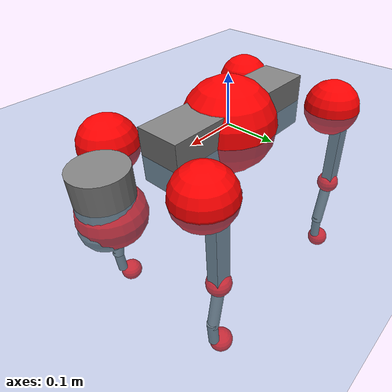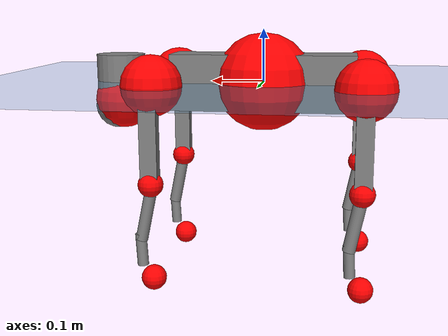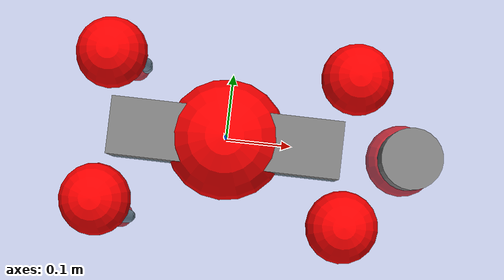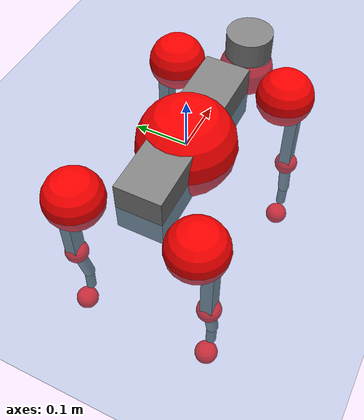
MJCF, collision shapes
<mujoco model="go2">
  <compiler angle="radian" assetdir="assets" balanceinertia="true" inertiafromgeom="false"/>

  <option timestep="0.005" density="1.2" viscosity="2e-05"/>

  <size nkey="1"/>

  <visual>
    <quality shadowsize="8192"/>
    <map shadowclip="0.5"/>
  </visual>

  <default>
    <default class="/">
      <geom contype="0" conaffinity="0" group="1" solref="-1000 -80"/>
      <site size="0.01 0.005 0.005" group="5"/>
      <general forcelimited="true" biastype="affine" gainprm="20" biasprm="0 -20 -0.5"/>
      <default class="go2">
        <joint armature="0.01" damping="0.01" frictionloss="0.2"/>
        <geom condim="1" margin="0.001"/>
        <default class="visual">
          <geom type="mesh" group="2"/>
        </default>
        <default class="collision">
          <geom group="3"/>
          <default class="foot">
            <geom size="0.022 0 0" condim="6" priority="1" friction="0.8 0.02 0.01" solimp="0.015 1 0.022"/>
          </default>
        </default>
        <default class="reward_collision_sphere">
          <geom group="5" rgba="1 0 0 1"/>
        </default>
      </default>
    </default>
  </default>

  <asset>
    <texture type="skybox" colorspace="auto" name="//unnamed_texture_0" builtin="gradient" rgb1="0.95 0.95 0.95" rgb2="0.95 0.95 0.95" width="100" height="600"/>
    <texture type="2d" colorspace="auto" name="texplane" builtin="checker" rgb1="0.345 0.575 0.748" rgb2="0.345 0.575 0.748" markrgb="1 1 1" width="512" height="512"/>
    <material name="MatPlane" class="/" texture="texplane" texuniform="true" texrepeat="2 2" specular="0.9"/>
    <material name="metal" class="/" rgba="0.9 0.95 0.95 1"/>
    <material name="black" class="/" rgba="0 0 0 1"/>
    <material name="white" class="/"/>
    <material name="gray" class="/" rgba="0.671705 0.692426 0.77427 1"/>
    <mesh name="base_0" class="/" file="base_0.obj"/>
    <mesh name="base_1" class="/" file="base_1.obj"/>
    <mesh name="base_2" class="/" file="base_2.obj"/>
    <mesh name="base_3" class="/" file="base_3.obj"/>
    <mesh name="base_4" class="/" file="base_4.obj"/>
    <mesh name="hip_0" class="/" file="hip_0.obj"/>
    <mesh name="hip_1" class="/" file="hip_1.obj"/>
    <mesh name="thigh_0" class="/" file="thigh_0.obj"/>
    <mesh name="thigh_1" class="/" file="thigh_1.obj"/>
    <mesh name="thigh_mirror_0" class="/" file="thigh_mirror_0.obj"/>
    <mesh name="thigh_mirror_1" class="/" file="thigh_mirror_1.obj"/>
    <mesh name="calf_0" class="/" file="calf_0.obj"/>
    <mesh name="calf_1" class="/" file="calf_1.obj"/>
    <mesh name="calf_mirror_0" class="/" file="calf_mirror_0.obj"/>
    <mesh name="calf_mirror_1" class="/" file="calf_mirror_1.obj"/>
    <mesh name="foot" class="/" file="foot.obj"/>
  </asset>

  <worldbody>
    <geom name="floor" class="/" size="100 100 0.125" type="plane" group="0" material="MatPlane"/>
    <light name="toplight_shadow" class="/" pos="0 0 5" dir="0.0990148 0.0990148 -0.990148" type="directional" ambient="0.04 0.04 0.04" diffuse="0.55 0.55 0.55" specular="0.12 0.12 0.12"/>
    <light name="toplight_fill" class="/" pos="0 0 5" dir="0.0990148 0.0990148 -0.990148" type="directional" castshadow="false" ambient="0.04 0.04 0.04" diffuse="0.3 0.3 0.3" specular="0.08 0.08 0.08"/>
    <body name="trunk" childclass="go2" pos="-0.00042133 1.07958e-05 -2.92318e-05" quat="1 6.53647e-05 0.000250414 4.86571e-05">
      <inertial pos="0.019828 0.000261048 -0.00428816" quat="-0.000557277 0.713875 0.000656311 0.700272" mass="5.67584" diaginertia="0.10101 0.0878772 0.010138"/>
      <joint name="//unnamed_joint_0" type="free" armature="0" damping="0" frictionloss="0"/>
      <geom name="//unnamed_geom_1" class="visual" material="black" mesh="base_0"/>
      <geom name="//unnamed_geom_2" class="visual" material="black" mesh="base_1"/>
      <geom name="//unnamed_geom_3" class="visual" material="black" mesh="base_2"/>
      <geom name="//unnamed_geom_4" class="visual" material="white" mesh="base_3"/>
      <geom name="//unnamed_geom_5" class="visual" material="gray" mesh="base_4"/>
      <geom name="trunk_1" class="collision" size="0.176024 0.0437488 0.0533408" type="box"/>
      <geom name="trunk_2" class="collision" size="0.0467901 0.0421111" pos="0.282038 0 0.00838241" type="cylinder"/>
      <geom name="trunk_3" class="collision" size="0.0439827" pos="0.289955 0 -0.0502945"/>
      <geom name="//unnamed_geom_9" class="reward_collision_sphere" size="0.0935803"/>
      <geom name="//unnamed_geom_10" class="reward_collision_sphere" size="0.0561482" pos="0.27709 0 -0.0377209"/>
      <site name="imu" pos="-0.0242572 -0.000356725 0.0345324" size="0.00935803"/>
      <camera name="track" pos="0 -1.95912 0" quat="0.707107 0.707107 0 0" mode="trackcom"/>
      <camera name="ego_camera" pos="0.308757 0 0.0377209" quat="-0.5 -0.5 0.5 0.5"/>
      <body name="FL_hip" pos="0.19168 0.0466271 0.0026151" quat="1 0.000101499 -1.13045e-05 4.79667e-05">
        <inertial pos="-0.00529519 0.00284702 8.88683e-05" quat="0.497019 0.499239 0.505465 0.498235" mass="0.54401" diaginertia="0.000831388 0.000534638 0.00019661"/>
        <joint name="FL_hip_joint" pos="0 0 0" axis="0.999998 0.00110705 -0.00170969" stiffness="0.00231285" range="-1.04807 1.04247" armature="0.00930765" damping="0.00265878" frictionloss="0.195463"/>
        <geom name="//unnamed_geom_11" class="visual" material="metal" mesh="hip_0"/>
        <geom name="//unnamed_geom_12" class="visual" material="gray" mesh="hip_1"/>
        <geom name="//unnamed_geom_13" class="collision" size="0.0430469 0.0187161" pos="0 0.0783649 0" quat="0.707107 0.707107 0 0" type="cylinder"/>
        <geom name="//unnamed_geom_14" class="reward_collision_sphere" size="0.0561482" pos="0 0.0685693 0"/>
        <body name="FL_thigh" pos="0.000343267 0.0939602 0.000989316" quat="1 1.69098e-06 -2.15585e-05 9.4087e-06">
          <inertial pos="-0.00401392 -0.0217443 -0.0280902" quat="0.830902 0.0850106 -0.0218926 0.549451" mass="0.956858" diaginertia="0.00566408 0.00523967 0.000365863"/>
          <joint name="FL_thigh_joint" pos="0 0 0" axis="-0.00397372 0.999972 0.00639892" stiffness="0.00531669" range="-1.57125 3.47505" armature="0.00914013" damping="0.00439565" frictionloss="0.19522"/>
          <geom name="//unnamed_geom_15" class="visual" material="metal" mesh="thigh_0"/>
          <geom name="//unnamed_geom_16" class="visual" material="gray" mesh="thigh_1"/>
          <geom name="//unnamed_geom_17" class="collision" size="0.099663 0.0114636 0.0159086" pos="0 0 -0.0892727" quat="0.707107 0 0.707107 0" type="box"/>
          <body name="FL_calf" pos="-0.000581334 -0.000752561 -0.178805" quat="1 -0.000124485 -4.59884e-05 0.000158631">
            <inertial pos="0.00618966 -2.66183e-06 -0.11714" quat="0.711228 0.00106819 -0.00408284 0.702949" mass="0.196595" diaginertia="0.0014142 0.00131019 2.20145e-05"/>
            <joint name="FL_calf_joint" pos="0 0 0" axis="0.00108999 0.999993 -0.00349104" range="-2.74276 -0.83381" armature="0.00939456" damping="0.0014993" frictionloss="0.189133"/>
            <geom name="//unnamed_geom_18" class="visual" material="gray" mesh="calf_0"/>
            <geom name="//unnamed_geom_19" class="visual" material="black" mesh="calf_1"/>
            <geom name="FL_calf0" class="collision" size="0.0112296 0.0561482" pos="0.00791685 0 -0.0502945" quat="0.994493 0 -0.104807 0" type="cylinder"/>
            <geom name="//unnamed_geom_21" class="collision" size="0.0102938 0.0304136" pos="0.0197921 0 -0.12406" quat="0.999688 0 0.0249974 0" type="cylinder"/>
            <geom name="//unnamed_geom_22" class="visual" pos="0 0 -0.178545" quat="1 0 0 0" material="black" mesh="foot"/>
            <geom name="FL_foot" class="foot" size="0.0183044" pos="-0.00197921 0 -0.178545"/>
            <geom name="//unnamed_geom_24" class="reward_collision_sphere" size="0.0233951"/>
            <geom name="//unnamed_geom_25" class="reward_collision_sphere" size="0.0233951" pos="-0.00197921 0 -0.178545"/>
            <site name="FL_foot" class="foot" pos="-0.00197921 0 -0.178545" size="0.00935803"/>
          </body>
        </body>
      </body>
      <body name="FR_hip" pos="0.191928 -0.0454936 0.000410669" quat="1 0.000104521 -7.48322e-05 -3.41051e-05">
        <inertial pos="-0.00428493 -0.00281398 0.000576296" quat="0.498898 0.507124 0.496626 0.497282" mass="0.560173" diaginertia="0.000848729 0.000540923 0.000201292"/>
        <joint name="FR_hip_joint" pos="0 0 0" axis="1 0.000419992 0.000306484" range="-1.04094 1.04869" armature="0.00939812" damping="0.0144564" frictionloss="0.185838"/>
        <geom name="//unnamed_geom_26" class="visual" pos="0 1.23112e-09 5.28051e-08" quat="4.63268e-05 1 0 0" material="metal" mesh="hip_0"/>
        <geom name="//unnamed_geom_27" class="visual" pos="0 1.99579e-09 -1.30607e-07" quat="4.63268e-05 1 0 0" material="gray" mesh="hip_1"/>
        <geom name="//unnamed_geom_28" class="collision" size="0.0430469 0.0187161" pos="0 -0.0783649 0" quat="0.707107 0.707107 0 0" type="cylinder"/>
        <geom name="//unnamed_geom_29" class="reward_collision_sphere" size="0.0561482" pos="0 -0.0685693 0"/>
        <body name="FR_thigh" pos="-0.000382445 -0.0931896 0.00042298" quat="1 -1.12577e-05 4.12765e-06 2.18643e-05">
          <inertial pos="-0.00312407 0.0218014 -0.026391" quat="0.551982 -0.0157328 0.0855718 0.829304" mass="0.931613" diaginertia="0.0056779 0.00526518 0.000362676"/>
          <joint name="FR_thigh_joint" pos="0 0 0" axis="0.000345468 -0.999999 0.00157148" stiffness="0.000128149" range="-3.49103 1.55991" armature="0.00975036" damping="0.015931" frictionloss="0.183403"/>
          <geom name="//unnamed_geom_30" class="visual" material="metal" mesh="thigh_mirror_0"/>
          <geom name="//unnamed_geom_31" class="visual" material="gray" mesh="thigh_mirror_1"/>
          <geom name="//unnamed_geom_32" class="collision" size="0.099663 0.0114636 0.0159086" pos="0 0 -0.0892727" quat="0.707107 0 0.707107 0" type="box"/>
          <body name="FR_calf" pos="0.000531511 -0.00100268 -0.178562" quat="1 0.00032184 1.127e-05 0.000331879">
            <inertial pos="0.00695126 0.000690908 -0.118876" quat="0.702757 -0.00345549 0.0039651 0.71141" mass="0.194117" diaginertia="0.00139701 0.00131913 2.17855e-05"/>
            <joint name="FR_calf_joint" pos="0 0 0" axis="0.00290213 -0.999993 -0.00225207" range="0.830488 2.7394" armature="0.00908051" damping="0.0104219" frictionloss="0.182181"/>
            <geom name="//unnamed_geom_33" class="visual" material="gray" mesh="calf_mirror_0"/>
            <geom name="//unnamed_geom_34" class="visual" material="black" mesh="calf_mirror_1"/>
            <geom name="FR_calf0" class="collision" size="0.0121654 0.0561482" pos="0.00989606 0 -0.0502945" quat="0.995004 0 -0.0998334 0" type="cylinder"/>
            <geom name="//unnamed_geom_36" class="collision" size="0.0102938 0.0304136" pos="0.0197921 0 -0.12406" quat="0.999688 0 0.0249974 0" type="cylinder"/>
            <geom name="//unnamed_geom_37" class="visual" pos="0 0 -0.178545" quat="1 0 0 0" material="black" mesh="foot"/>
            <geom name="FR_foot" class="foot" size="0.0216282" pos="-0.00197921 0 -0.178545"/>
            <geom name="//unnamed_geom_39" class="reward_collision_sphere" size="0.0233951"/>
            <geom name="//unnamed_geom_40" class="reward_collision_sphere" size="0.0233951" pos="-0.00197921 0 -0.178545"/>
            <site name="FR_foot" class="foot" pos="-0.00197921 0 -0.178545" size="0.00935803"/>
          </body>
        </body>
      </body>
      <body name="RL_hip" pos="-0.191593 0.0463812 -0.000918375" quat="1 8.06605e-05 8.58198e-06 -8.05084e-05">
        <inertial pos="0.00522161 0.00135573 -0.00122468" quat="0.506599 0.499841 0.495376 0.498116" mass="0.557903" diaginertia="0.000853557 0.000536572 0.000201537"/>
        <joint name="RL_hip_joint" pos="0 0 0" axis="-0.999807 0.00227203 0.0195003" stiffness="0.00323301" range="-1.05126 1.04852" armature="0.00940154" damping="0.00669445" frictionloss="0.186545"/>
        <geom name="//unnamed_geom_41" class="visual" pos="-1.31862e-09 0 -2.58481e-07" quat="4.63268e-05 0 1 0" material="metal" mesh="hip_0"/>
        <geom name="//unnamed_geom_42" class="visual" pos="-2.13765e-09 0 -2.29236e-07" quat="4.63268e-05 0 1 0" material="gray" mesh="hip_1"/>
        <geom name="//unnamed_geom_43" class="collision" size="0.0430469 0.0187161" pos="0 0.0783649 0" quat="0.707107 0.707107 0 0" type="cylinder"/>
        <geom name="//unnamed_geom_44" class="reward_collision_sphere" size="0.0561482" pos="0 0.0685693 0"/>
        <body name="RL_thigh" pos="0.000303467 0.0932269 -0.0012783" quat="1 -6.29176e-05 -0.00013391 6.50954e-05">
          <inertial pos="-0.00450278 -0.0217073 -0.0279174" quat="0.829617 0.085175 -0.0205025 0.551416" mass="0.957913" diaginertia="0.00565319 0.00526739 0.000366736"/>
          <joint name="RL_thigh_joint" pos="0 0 0" axis="-0.00245832 0.999994 0.00258904" stiffness="0.00318827" range="-0.508597 4.55658" armature="0.00958545" damping="0.00987943" frictionloss="0.186399"/>
          <geom name="//unnamed_geom_45" class="visual" material="metal" mesh="thigh_0"/>
          <geom name="//unnamed_geom_46" class="visual" material="gray" mesh="thigh_1"/>
          <geom name="//unnamed_geom_47" class="collision" size="0.099663 0.0114636 0.0159086" pos="0 0 -0.0892727" quat="0.707107 0 0.707107 0" type="box"/>
          <body name="RL_calf" pos="0.000964496 -0.00131646 -0.178928" quat="1 0.000179157 -8.06045e-05 -7.07512e-06">
            <inertial pos="0.00549407 -0.000494358 -0.118509" quat="0.708711 0.00181549 -0.00804555 0.705451" mass="0.200138" diaginertia="0.00144712 0.00133225 2.23169e-05"/>
            <joint name="RL_calf_joint" pos="0 0 0" axis="-0.00421446 0.999971 0.00631192" range="-2.72679 -0.820593" armature="0.00946486" damping="0.000193543" frictionloss="0.191369"/>
            <geom name="//unnamed_geom_48" class="visual" material="gray" mesh="calf_0"/>
            <geom name="//unnamed_geom_49" class="visual" material="black" mesh="calf_1"/>
            <geom name="RL_calf0" class="collision" size="0.0121654 0.0561482" pos="0.00989606 0 -0.0502945" quat="0.995004 0 -0.0998334 0" type="cylinder"/>
            <geom name="//unnamed_geom_51" class="collision" size="0.0102938 0.0304136" pos="0.0197921 0 -0.12406" quat="0.999688 0 0.0249974 0" type="cylinder"/>
            <geom name="//unnamed_geom_52" class="visual" pos="0 0 -0.178545" quat="1 0 0 0" material="black" mesh="foot"/>
            <geom name="RL_foot" class="foot" size="0.0181239" pos="-0.00197921 0 -0.178545"/>
            <geom name="//unnamed_geom_54" class="reward_collision_sphere" size="0.0233951"/>
            <geom name="//unnamed_geom_55" class="reward_collision_sphere" size="0.0233951" pos="-0.00197921 0 -0.178545"/>
            <site name="RL_foot" class="foot" pos="-0.00197921 0 -0.178545" size="0.00935803"/>
          </body>
        </body>
      </body>
      <body name="RR_hip" pos="-0.190477 -0.0454096 -0.0016716" quat="1 8.20662e-05 5.72864e-05 -0.000228488">
        <inertial pos="0.00611314 -0.00270538 -0.000343856" quat="0.496961 0.498243 0.50193 0.502842" mass="0.547082" diaginertia="0.000831468 0.000533443 0.000196406"/>
        <joint name="RR_hip_joint" pos="0 0 0" axis="-0.999999 -8.33252e-05 -0.0015379" range="-1.04454 1.03327" armature="0.00954184" damping="0.00778567" frictionloss="0.187712"/>
        <geom name="//unnamed_geom_56" class="visual" pos="1.31828e-09 1.23112e-09 -3.11286e-07" quat="2.14617e-09 4.63268e-05 4.63268e-05 -1" material="metal" mesh="hip_0"/>
        <geom name="//unnamed_geom_57" class="visual" pos="2.13851e-09 1.99579e-09 -9.86283e-08" quat="2.14617e-09 4.63268e-05 4.63268e-05 -1" material="gray" mesh="hip_1"/>
        <geom name="//unnamed_geom_58" class="collision" size="0.0430469 0.0187161" pos="0 -0.0783649 0" quat="0.707107 0.707107 0 0" type="cylinder"/>
        <geom name="//unnamed_geom_59" class="reward_collision_sphere" size="0.0561482" pos="0 -0.0685693 0"/>
        <body name="RR_thigh" pos="0.000714949 -0.0940437 -0.00134096" quat="1 9.11646e-05 1.18185e-05 0.000147638">
          <inertial pos="-0.00333924 0.0210562 -0.0270038" quat="0.551582 -0.0199705 0.0850076 0.829537" mass="0.963229" diaginertia="0.00575987 0.0053457 0.000367344"/>
          <joint name="RR_thigh_joint" pos="0 0 0" axis="-0.000474496 -0.999977 0.00681434" range="-4.55596 0.518859" armature="0.00916762" damping="0.0135213" frictionloss="0.188417"/>
          <geom name="//unnamed_geom_60" class="visual" material="metal" mesh="thigh_mirror_0"/>
          <geom name="//unnamed_geom_61" class="visual" material="gray" mesh="thigh_mirror_1"/>
          <geom name="//unnamed_geom_62" class="collision" size="0.099663 0.0114636 0.0159086" pos="0 0 -0.0892727" quat="0.707107 0 0.707107 0" type="box"/>
          <body name="RR_calf" pos="0.000406886 4.08666e-05 -0.179392" quat="1 2.47317e-05 5.06143e-05 9.73387e-06">
            <inertial pos="0.00555022 0.00118644 -0.118325" quat="0.702819 -0.00132664 0.00166195 0.711365" mass="0.197577" diaginertia="0.00142369 0.00131922 2.21906e-05"/>
            <joint name="RR_calf_joint" pos="0 0 0" axis="-0.00134117 -0.999997 0.00186469" range="0.831772 2.72714" armature="0.00938296" damping="0.0100735" frictionloss="0.18246"/>
            <geom name="//unnamed_geom_63" class="visual" material="gray" mesh="calf_mirror_0"/>
            <geom name="//unnamed_geom_64" class="visual" material="black" mesh="calf_mirror_1"/>
            <geom name="RR_calf0" class="collision" size="0.0121654 0.0561482" pos="0.00989606 0 -0.0502945" quat="0.995004 0 -0.0998334 0" type="cylinder"/>
            <geom name="//unnamed_geom_66" class="collision" size="0.0102938 0.0304136" pos="0.0197921 0 -0.12406" quat="0.999688 0 0.0249974 0" type="cylinder"/>
            <geom name="//unnamed_geom_67" class="visual" pos="0 0 -0.178545" quat="1 0 0 0" material="black" mesh="foot"/>
            <geom name="RR_foot" class="foot" size="0.0223066" pos="-0.00197921 0 -0.178545"/>
            <geom name="//unnamed_geom_69" class="reward_collision_sphere" size="0.0233951"/>
            <geom name="//unnamed_geom_70" class="reward_collision_sphere" size="0.0233951" pos="-0.00197921 0 -0.178545"/>
            <site name="RR_foot" class="foot" pos="-0.00197921 0 -0.178545" size="0.00935803"/>
          </body>
        </body>
      </body>
    </body>
  </worldbody>

  <contact>
    <pair class="/" geom1="floor" geom2="FL_foot" name="//unnamed_contact_0"/>
    <pair class="/" geom1="floor" geom2="FR_foot" name="//unnamed_contact_1"/>
    <pair class="/" geom1="floor" geom2="RL_foot" name="//unnamed_contact_2"/>
    <pair class="/" geom1="floor" geom2="RR_foot" name="//unnamed_contact_3"/>
  </contact>

  <actuator>
    <general name="FL_hip" class="/" joint="FL_hip_joint" forcerange="-22.6678 22.6678" gainprm="19.1958" biasprm="0 -19.1958 -0.479532"/>
    <general name="FL_thigh" class="/" joint="FL_thigh_joint" forcerange="-21.8864 21.8864" gainprm="19.1958" biasprm="0 -19.1958 -0.479532"/>
    <general name="FL_calf" class="/" joint="FL_calf_joint" forcerange="-42.4193 42.4193" gainprm="19.1958" biasprm="0 -19.1958 -0.479532"/>
    <general name="FR_hip" class="/" joint="FR_hip_joint" forcerange="-22.2097 22.2097" gainprm="19.1958" biasprm="0 -19.1958 -0.479532"/>
    <general name="FR_thigh" class="/" joint="FR_thigh_joint" forcerange="-21.4379 21.4379" gainprm="19.1958" biasprm="0 -19.1958 -0.479532"/>
    <general name="FR_calf" class="/" joint="FR_calf_joint" forcerange="-41.5195 41.5195" gainprm="19.1958" biasprm="0 -19.1958 -0.479532"/>
    <general name="RL_hip" class="/" joint="RL_hip_joint" forcerange="-22.2402 22.2402" gainprm="19.1958" biasprm="0 -19.1958 -0.479532"/>
    <general name="RL_thigh" class="/" joint="RL_thigh_joint" forcerange="-22.8705 22.8705" gainprm="19.1958" biasprm="0 -19.1958 -0.479532"/>
    <general name="RL_calf" class="/" joint="RL_calf_joint" forcerange="-42.1203 42.1203" gainprm="19.1958" biasprm="0 -19.1958 -0.479532"/>
    <general name="RR_hip" class="/" joint="RR_hip_joint" forcerange="-22.0548 22.0548" gainprm="19.1958" biasprm="0 -19.1958 -0.479532"/>
    <general name="RR_thigh" class="/" joint="RR_thigh_joint" forcerange="-21.9589 21.9589" gainprm="19.1958" biasprm="0 -19.1958 -0.479532"/>
    <general name="RR_calf" class="/" joint="RR_calf_joint" forcerange="-43.2079 43.2079" gainprm="19.1958" biasprm="0 -19.1958 -0.479532"/>
  </actuator>

  <sensor>
    <gyro site="imu" name="imu_angular_velocity"/>
    <velocimeter site="imu" name="imu_linear_velocity"/>
    <framelinvel objtype="site" objname="FL_foot" name="FL_foot_global_linear_velocity"/>
    <framelinvel objtype="site" objname="FR_foot" name="FR_foot_global_linear_velocity"/>
    <framelinvel objtype="site" objname="RL_foot" name="RL_foot_global_linear_velocity"/>
    <framelinvel objtype="site" objname="RR_foot" name="RR_foot_global_linear_velocity"/>
  </sensor>

  <keyframe>
    <key name="home" qpos="0 0 0.325 1 0 0 0 0.1 0.8 -1.5 -0.1 -0.8 1.5 -0.1 0.8 -1.5 0.1 -0.8 1.5"/>
  </keyframe>
</mujoco>
